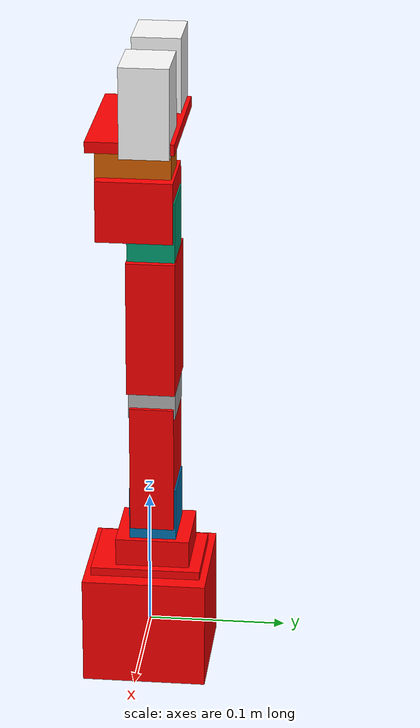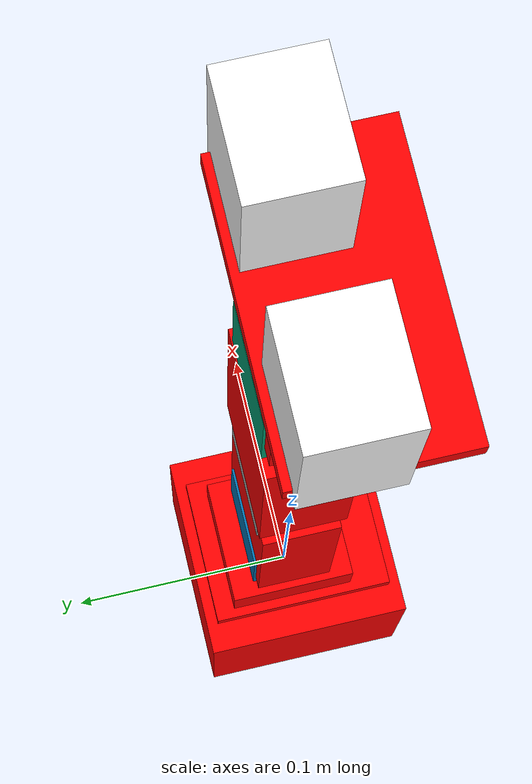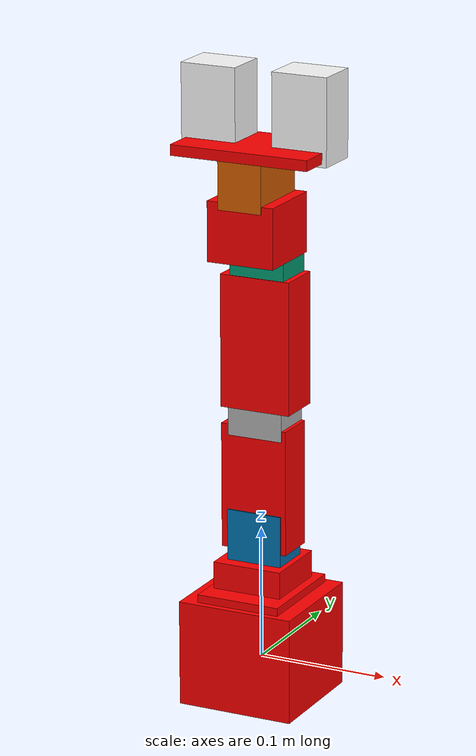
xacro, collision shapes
<?xml version="1.0"?>

<robot xmlns:xacro="http://www.ros.org/wiki/xacro" name="arm">

  <material name="red">
    <color rgba="1 0 0 1"/>
  </material>

  <link name="base_link">
    <visual>
      <geometry>
        <mesh filename="file:///home/user/ros2_ws/src/armando_description/meshes/base_link.stl" scale="0.001 0.001 0.001"/>
      </geometry>
      <origin rpy="0 0 0" xyz="0 0 0"/>
      <material name="red"/>
    </visual>
    <collision>
      <geometry>
        <box size="0.09 0.09 0.08"/>
      </geometry>
      <origin rpy="0 0 0" xyz="0 0 0.01"/>
    </collision>
    <inertial>
      <mass value="0.1"/>
      <inertia ixx="1.06682889e+08" ixy="0.0" ixz="0.0" iyy="9.92165844e+07" iyz="0.0" izz="1.26939175e+08"/>
    </inertial>
  </link>

  <joint name="camera_joint" type="fixed">
    <parent link="base_link"/>
    <child link="camera_link"/>
    <origin xyz="-0.0011 -0.011 0.05" rpy="0.0 0.0 1.57"/>
  </joint>

  <link name="camera_link">
    <visual name="">
      <origin xyz="0.05 0.0 -0.0665" rpy="0.0 0.0 0.0"/>
      <geometry>
        <box size="0.06 0.02 0.02"/>
      </geometry>
      <material name="">
        <color rgba="0.0 0.0 1.0 1.0"/>
      </material>
    </visual>
  </link>

  <joint name="base_1_2" type="fixed">
    <parent link="base_link"/>
    <child link="base_turn"/>
    <origin xyz="-0.0011 -0.011 0.05"/>
  </joint>

  <link name="base_turn">
    <visual>
      <geometry>
        <mesh filename="file:///home/user/ros2_ws/src/armando_description/meshes/base_turn.stl" scale="0.001 0.001 0.001"/>
      </geometry>
      <origin rpy="0 0 0" xyz="0 0 0"/>
      <material name="red"/>
    </visual>
    <collision>
      <geometry>
          <box size="0.065 0.08 0.009"/>
        </geometry>
      <origin rpy="0 0 0" xyz="0.0014 0.011 0.0016"/>
    </collision>
    <inertial>
      <mass value="0.1"/>
      <inertia ixx="1.35223008e+07" ixy="0.0" ixz="0.0" iyy="8.13814925e+06" iyz="0.0" izz="2.14903814e+07"/>
    </inertial>
  </link>

  <joint name="j0" type="revolute">
    <parent link="base_turn"/>
    <child link="base_turn_rot"/>
    <origin xyz="-0.0 0.0155 0.013" rpy = "0 0 -1.57"/>
    <axis xyz="0 0 1" />
    <limit effort="300" velocity="0.1" lower="-2.57" upper="2.57"/>
  </joint>

  <link name="base_turn_rot">
    <visual>
      <geometry>
        <mesh filename="file:///home/user/ros2_ws/src/armando_description/meshes/base_turn_table_rot.stl" scale="0.001 0.001 0.001"/>
      </geometry>
      <material name="red"/>
    </visual>
    <collision>
      <geometry>
          <box size = "0.054 0.054 0.022"/>
        </geometry>
      <origin rpy="0 0 0" xyz="0.00 0 0.0025"/>
    </collision>

    <inertial>
      <mass value="0.1"/>
      <inertia ixx="0.001" ixy="0.0" ixz="0.0" iyy="0.001" iyz="0.0" izz="0.001"/>
    </inertial>
  </link>

  <joint name="base_turn_rot_dyn2" type="fixed">
    <parent link="base_turn_rot"/>
    <child link="dyn2"/>
    <origin xyz="0 0 0.0385" rpy="0 1.57 1.57 "/>
  </joint>

  <link name="dyn2">
    <visual>
      <geometry>
        <mesh filename="file:///home/user/ros2_ws/src/armando_description/meshes/dyn.stl" scale="0.01 0.01 0.01"/>
      </geometry>

      <origin rpy="0 0 0" xyz="0 0 0"/>
    </visual>
    <collision>
      <geometry>
          <box size="0.054 0.034 0.043"/>
        </geometry>
      <origin rpy="0 0 0" xyz="0.013 0 0.001"/>
    </collision>
     <inertial>
      <mass value="0.1"/>
      <inertia ixx="6.90013881e-05" ixy="0.0" ixz="0.0" iyy="1.24554875e-04" iyz="0.0" izz="1.04295793e-04"/>
    </inertial>
  </link>

  <joint name="j1" type="revolute">
    <parent link="dyn2"/>
    <child link="dyn2_r"/>
    <origin xyz="0 0 0.0" rpy="0 0 0"/>
    <axis xyz="0 0 1" />
    <limit effort="300" velocity="0.1" lower="-3.14" upper="3.14"/>
  </joint>

  <link name="dyn2_r">

  </link>

  <joint name="dyn2_f4" type="fixed">
    <parent link="dyn2_r"/>
    <child link="f4"/>
    <origin xyz="-0.047 0.0 -0.003" rpy="0 1.57 1.57"/>
  </joint>

  <link name="f4">
    <visual>
      <geometry>
        <mesh filename="file:///home/user/ros2_ws/src/armando_description/meshes/f4_n_f3.stl" scale="0.001 0.001 0.001"/>
      </geometry>
      <origin rpy="0 0 0" xyz="0 0 0"/>
      <material name="red"/>
    </visual>
    <collision>
      <geometry>
          <box size="0.052 0.095 0.032"/>
        </geometry>
      <origin rpy="0 0 0" xyz="-0.0035 -0.015 0"/>
    </collision>
     <inertial>
      <mass value="0.1"/>
      <inertia ixx="6.90013881e-05" ixy="0.0" ixz="0.0" iyy="1.24554875e-04" iyz="0.0" izz="1.04295793e-04"/>
    </inertial>
  </link>

  <joint name="d4_dyn3" type="fixed">
    <parent link="f4"/>
    <child link="dyn3"/>
    <origin xyz="-0.004 0.0645 0 " rpy="-1.57 3.14 1.57"/>
  </joint>

  <link name="dyn3">
    <visual>
      <geometry>
        <mesh filename="file:///home/user/ros2_ws/src/armando_description/meshes/dyn.stl" scale="0.01 0.01 0.01"/>
      </geometry>
      <origin rpy="0 0 0" xyz="0 0 0"/>
    </visual>
    <collision>
      <geometry>
          <box size="0.054 0.034 0.043"/>
        </geometry>
      <origin rpy="0 0 0" xyz="0.013 0 0.001"/>
    </collision>
     <inertial>
      <mass value="0.1"/>
      <inertia ixx="6.90013881e-05" ixy="0.0" ixz="0.0" iyy="1.24554875e-04" iyz="0.0" izz="1.04295793e-04"/>
    </inertial>
  </link>

  <joint name="j2" type="revolute">
    <parent link="dyn3"/>
    <child link="dyn3_r"/>
    <origin xyz="0 0 0.0" rpy="0 0 0"/>
    <axis xyz="0 0 1" />
    <limit effort="300" velocity="0.1" lower="-3.14" upper="3.14"/>
  </joint>

 <link name="dyn3_r">

  </link>

  <joint name="dyn3_f5" type="fixed">
    <parent link="dyn3_r"/>
    <child link="f5"/>
    <origin xyz="-0.046 -0.0 -0.002" rpy="1.57 1.57 3.1415 "/>
  </joint>

  <link name="f5">
    <visual>
      <geometry>
        <mesh filename="file:///home/user/ros2_ws/src/armando_description/meshes/f4_n_f3.stl" scale="0.001 0.001 0.001"/>
      </geometry>
      <origin rpy="0 0 0" xyz="0 0 0"/>
      <material name="red"/>
    </visual>
    <collision>
      <geometry>
          <box size="0.055 0.1 0.035"/>
        </geometry>
      <origin rpy="0 0 0" xyz="-0.0035 -0.015 0"/>
    </collision>

    <inertial>
      <mass value="0.1"/>
  <inertia ixx="0.001" ixy="0.0" ixz="0.0" iyy="0.001" iyz="0.0" izz="0.001"/>    </inertial>
  </link>

  <joint name="f5_dyn4" type="fixed">
    <parent link="f5"/>
    <child link="dyn4"/>
    <origin xyz="-0.004 0.065 -0.0" rpy="-1.57 3.1415 1.57 "/>
  </joint>

  <link name="dyn4">
    <visual>
      <geometry>
        <mesh filename="file:///home/user/ros2_ws/src/armando_description/meshes/dyn.stl" scale="0.01 0.01 0.01"/>
      </geometry>

      <origin rpy="0 0 0" xyz="0 0 0"/>
    </visual>
    <collision>
      <geometry>
          <box size="0.054 0.034 0.043"/>
        </geometry>
      <origin rpy="0 0 0" xyz="0.013 0 0.001"/>
    </collision>

    <inertial>
      <mass value="0.1"/>
      <inertia ixx="6.90013881e-05" ixy="0.0" ixz="0.0" iyy="1.24554875e-04" iyz="0.0" izz="1.04295793e-04"/>
    </inertial>
  </link>

  <joint name="j3" type="revolute">
    <parent link="dyn4"/>
    <child link="dyn4_r"/>
    <origin xyz="0 0 0.0" rpy="0 0 0"/>
    <axis xyz="0 0 1" />
    <limit effort="300" velocity="0.1" lower="-3.14" upper="3.14"/>
  </joint>

  <link name="dyn4_r">

  </link>

  <joint name="f5_wrist" type="fixed">
    <parent link="dyn4_r"/>
    <child link="wrist"/>
    <origin xyz="-0.017 -0.013 0.003" rpy="1.57 1.57 -1.57"/>
  </joint>

  <link name="wrist">
    <visual>
      <geometry>
        <mesh filename="file:///home/user/ros2_ws/src/armando_description/meshes/wrist.stl" scale="0.001 0.001 0.001"/>
      </geometry>
      <origin rpy="0 0 0" xyz="0 0 0"/>
      <material name="red"/>
    </visual>
    <collision>
      <geometry>
        <box size="0.052 0.055 0.045"/>
        <mesh filename="file:///home/user/ros2_ws/src/armando_description/meshes/wrist.stl" scale="0.001 0.001 0.001"/>
      </geometry>
      <origin rpy="0 0 0" xyz="0.004 -0.0015 -0.01"/>
    </collision>

     <inertial>
      <mass value="0.1"/>
      <inertia ixx="6.90013881e-05" ixy="0.0" ixz="0.0" iyy="1.24554875e-04" iyz="0.0" izz="1.04295793e-04"/>
    </inertial>
  </link>

  <joint name="wrist_dyn5" type="fixed">
    <parent link="wrist"/>
    <child link="dyn5"/>
    <origin xyz="0.0038 -0.013 0.0275" rpy="0 0 1.57"/>
  </joint>

    <link name="dyn5">
    <visual>
      <geometry>
        <mesh filename="file:///home/user/ros2_ws/src/armando_description/meshes/dyn.stl" scale="0.01 0.01 0.01"/>
      </geometry>
      <origin rpy="0 0 0" xyz="0 0 0"/>
    </visual>
    <collision>
      <geometry>
          <box size="0.054 0.034 0.043"/>
        </geometry>
      <origin rpy="0 0 0" xyz="0.013 0 0.001"/>
    </collision>

    <inertial>
      <mass value="0.1"/>
      <inertia ixx="6.90013881e-05" ixy="0.0" ixz="0.0" iyy="1.24554875e-04" iyz="0.0" izz="1.04295793e-04"/>
    </inertial>
  </link>

  <joint name="dyn5_dyn5_r" type="fixed">
    <parent link="dyn5"/>
    <child link="dyn5_r"/>
    <origin xyz="0 0 0.0" rpy="0 0 0"/>
    <axis xyz="0 0 1" />
    <limit effort="300" velocity="0.1" lower="-3.14" upper="3.14"/>
  </joint>

  <link name="dyn5_r">

  </link>

  <joint name="wrist_rotate_dyn5" type="fixed">
    <parent link="dyn5_r"/>
    <child link="crawer_base"/>
    <origin xyz="0.015 0 0.019" rpy="0 0 1.57"/>
  </joint>

  <link name="crawer_base">
    <visual>
      <geometry>
        <mesh filename="file:///home/user/ros2_ws/src/armando_description/meshes/the_crawer_base.stl" scale="0.001 0.001 0.001"/>
      </geometry>
      <origin rpy="0 0 0" xyz="0 0 0"/>
      <material name="red"/>
    </visual>
    <collision>
      <geometry>
          <box size="0.108 0.062 0.008"/>
          <mesh filename="file:///home/user/ros2_ws/src/armando_description/meshes/the_crawer_base.stl" scale="0.001 0.001 0.001"/>
        </geometry>
      <origin rpy="0 0 0" xyz="0 0.0045 0.0005"/>
    </collision>

    <inertial>
      <mass value="0.1"/>
      <inertia ixx="6.90013881e-05" ixy="0.0" ixz="0.0" iyy="1.24554875e-04" iyz="0.0" izz="1.04295793e-04"/>
    </inertial>
  </link>

  <joint name="crawer_base_crawer_left" type="fixed">
    <parent link="crawer_base"/>
    <child link="crawer_left"/>
    <origin xyz="-0.03 0.015 0.01" rpy="0 -1.57 0"/>
  </joint>

  <link name="crawer_left">
    <visual>
      <geometry>
        <mesh filename="file:///home/user/ros2_ws/src/armando_description/meshes/the_crawer.stl" scale="0.001 0.001 0.001"/>
      </geometry>
      <origin rpy="0 0 0" xyz="0 0 0"/>
      <material name="white">
        <color rgba="1 1 1 1"/>
      </material>
    </visual>
    <collision>
      <geometry>
          <box size = "0.065 0.035 0.043"/>
        </geometry>
      <origin rpy="0 0 0" xyz="0.0165 0 0.006"/>
    </collision>

    <inertial>
      <mass value="0.1"/>
      <inertia ixx="6.90013881e-05" ixy="0.0" ixz="0.0" iyy="1.24554875e-04" iyz="0.0" izz="1.04295793e-04"/>
    </inertial>
  </link>

  <joint name="crawer_base_crawer_right" type="fixed">
    <parent link="crawer_base"/>
    <child link="crawer_right"/>
    <origin xyz="0.03 0.015 0.01" rpy="3.1415 -1.57 0"/>
  </joint>

  <link name="crawer_right">
    <visual>
      <geometry>
        <mesh filename="file:///home/user/ros2_ws/src/armando_description/meshes/the_crawer.stl" scale="0.001 0.001 0.001"/>
      </geometry>
      <origin rpy="0 0 0" xyz="0 0 0"/>
      <material name="white">
        <color rgba="1 1 1 1"/>
      </material>
    </visual>
    <collision>
      <geometry>
          <box size = "0.065 0.035 0.043"/>
        </geometry>
      <origin rpy="0 0 0" xyz="0.0165 0 0.006"/>
    </collision>
    <inertial>
      <mass value="0.1"/>
      <inertia ixx="6.90013881e-05" ixy="0.0" ixz="0.0" iyy="1.24554875e-04" iyz="0.0" izz="1.04295793e-04"/>
    </inertial>
  </link>

  <xacro:include filename="$(find armando_description)/urdf/armando_hardware_interface.xacro" />

  <ros2_control name="PostionJointInterface" type="system">

    <hardware>
      <plugin>ign_ros2_control/IgnitionSystem</plugin>
    </hardware>

    <xacro:armando_hardware_interface joint_name="j0"/>
    <xacro:armando_hardware_interface joint_name="j1"/>
    <xacro:armando_hardware_interface joint_name="j2"/>
    <xacro:armando_hardware_interface joint_name="j3"/>

  </ros2_control>

  <xacro:include filename="$(find armando_gazebo)/urdf/armando_camera.xacro" />

  <xacro:armando_camera camera_link="camera_link" camera_name="armando_camera" fov="1.047" width_res="320" height_res="240" near="0.1" far="100" topic_name="camera"/>

  <gazebo>
    <plugin filename="ign_ros2_control-system" name="ign_ros2_control::IgnitionROS2ControlPlugin">
    <parameters>$(find armando_description)/config/armando_controllers.yaml</parameters>
      <controller_manager_prefix_node_name>controller_manager</controller_manager_prefix_node_name>
    </plugin>
  </gazebo>

</robot>
